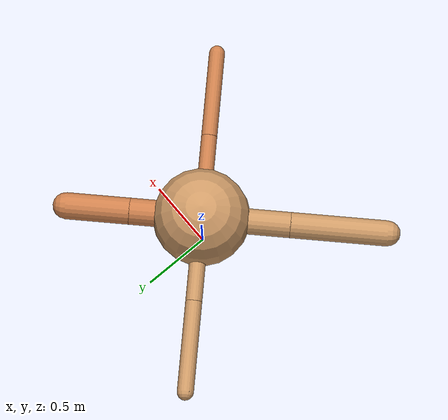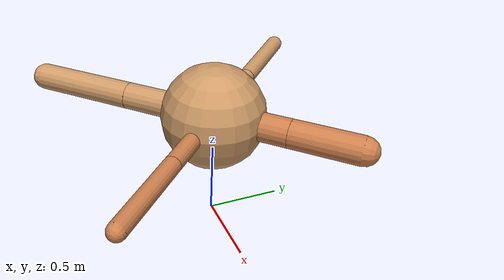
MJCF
<?xml version="1.0" ?>
<mujoco model="ant">

	<compiler angle="degree" coordinate="local" inertiafromgeom="true"/>

	<option integrator="RK4" timestep="0.01"/>

	<custom>

		<numeric data="0.0 0.0 0.55 1.0 0.0 0.0 0.0 0.0 1.0 0.0 -1.0 0.0 -1.0 0.0 1.0" name="init_qpos"/>

	</custom>

	<default>

		<joint armature="1" damping="1" limited="true"/>

		<geom conaffinity="0" condim="3" density="5.0" friction="1.5 0.1 0.1" margin="0.01" rgba="0.8 0.6 0.4 1"/>

	</default>

	<worldbody>

		<body name="torso" pos="0 0 0.75">

			<geom name="torso_geom" pos="0 0 0" size="0.34427631353369353" type="sphere"/>

			<!--joint armature="0" damping="0" limited="false" margin="0.01" name="root" pos="0 0 0" type="free"/-->

			<body name="front_left_leg" pos="0 0 0">

				<geom fromto="0 0 0 0.2 0.2 0" name="aux_1_geom" size="0.09403202812433317" type="capsule" rgba=".8 .5 .3 1"/>

				<body name="aux_1" pos="0.2 0.2 0">

					<joint axis="0 0 1" name="hip_1" pos="0.0 0.0 0.0" range="-40 40" type="hinge"/>

					<geom fromto="0 0 0 0.15851234843096004 0.15851234843096004 0" name="left_leg_geom" size="0.09403202812433317" type="capsule" rgba=".8 .5 .3 1"/>

					<body pos="0.15851234843096004 0.15851234843096004 0" name="front_left_foot">

						<joint axis="-1 1 0" name="ankle_1" pos="0.0 0.0 0.0" range="30 100" type="hinge"/>

						<geom fromto="0 0 0 0.3170246968619201 0.3170246968619201 0" name="left_ankle_geom" size="0.09403202812433317" type="capsule" rgba=".8 .5 .3 1"/>

					</body>

				</body>

			</body>

			<body name="front_right_leg" pos="0 0 0">

				<geom fromto="0 0 0 -0.2 0.2 0" name="aux_2_geom" size="0.058344796691618156" type="capsule"/>

				<body name="aux_2" pos="-0.2 0.2 0">

					<joint axis="0 0 1" name="hip_2" pos="0.0 0.0 0.0" range="-40 40" type="hinge"/>

					<geom fromto="0 0 0 -0.22539201399825626 0.22539201399825626 0" name="right_leg_geom" size="0.058344796691618156" type="capsule"/>

					<body pos="-0.22539201399825626 0.22539201399825626 0" name="front_right_foot">

						<joint axis="1 1 0" name="ankle_2" pos="0.0 0.0 0.0" range="-100 -30" type="hinge"/>

						<geom fromto="0 0 0 -0.4507840279965125 0.4507840279965125 0" name="right_ankle_geom" size="0.058344796691618156" type="capsule"/>

					</body>

				</body>

			</body>

			<body name="left_back_leg" pos="0 0 0">

				<geom fromto="0 0 0 -0.2 -0.2 0" name="aux_3_geom" size="0.09054129070899497" type="capsule"/>

				<body name="aux_3" pos="-0.2 -0.2 0">

					<joint axis="0 0 1" name="hip_3" pos="0.0 0.0 0.0" range="-40 40" type="hinge"/>

					<geom fromto="0 0 0 -0.2412570478146878 -0.2412570478146878 0" name="back_leg_geom" size="0.09054129070899497" type="capsule"/>

					<body pos="-0.2412570478146878 -0.2412570478146878 0" name="left_back_foot">

						<joint axis="-1 1 0" name="ankle_3" pos="0.0 0.0 0.0" range="-100 -30" type="hinge"/>

						<geom fromto="0 0 0 -0.4825140956293756 -0.4825140956293756 0" name="third_ankle_geom" size="0.09054129070899497" type="capsule"/>

					</body>

				</body>

			</body>

			<body name="right_back_leg" pos="0 0 0">

				<geom fromto="0 0 0 0.2 -0.2 0" name="aux_4_geom" size="0.056084993217127795" type="capsule" rgba=".8 .5 .3 1"/>

				<body name="aux_4" pos="0.2 -0.2 0">

					<joint axis="0 0 1" name="hip_4" pos="0.0 0.0 0.0" range="-40 40" type="hinge"/>

					<geom fromto="0 0 0 0.2169899784598945 -0.2169899784598945 0" name="rightback_leg_geom" size="0.056084993217127795" type="capsule" rgba=".8 .5 .3 1"/>

					<body pos="0.2169899784598945 -0.2169899784598945 0" name="right_back_foot">

						<joint axis="1 1 0" name="ankle_4" pos="0.0 0.0 0.0" range="30 100" type="hinge"/>

						<geom fromto="0 0 0 0.433979956919789 -0.433979956919789 0" name="fourth_ankle_geom" size="0.056084993217127795" type="capsule" rgba=".8 .5 .3 1"/>

					</body>

				</body>

			</body>

		</body>

	</worldbody>

	<actuator>

		<motor ctrllimited="true" ctrlrange="-1.0 1.0" joint="hip_4" gear="150"/>

		<motor ctrllimited="true" ctrlrange="-1.0 1.0" joint="ankle_4" gear="150"/>

		<motor ctrllimited="true" ctrlrange="-1.0 1.0" joint="hip_1" gear="150"/>

		<motor ctrllimited="true" ctrlrange="-1.0 1.0" joint="ankle_1" gear="150"/>

		<motor ctrllimited="true" ctrlrange="-1.0 1.0" joint="hip_2" gear="150"/>

		<motor ctrllimited="true" ctrlrange="-1.0 1.0" joint="ankle_2" gear="150"/>

		<motor ctrllimited="true" ctrlrange="-1.0 1.0" joint="hip_3" gear="150"/>

		<motor ctrllimited="true" ctrlrange="-1.0 1.0" joint="ankle_3" gear="150"/>

	</actuator>

</mujoco>
